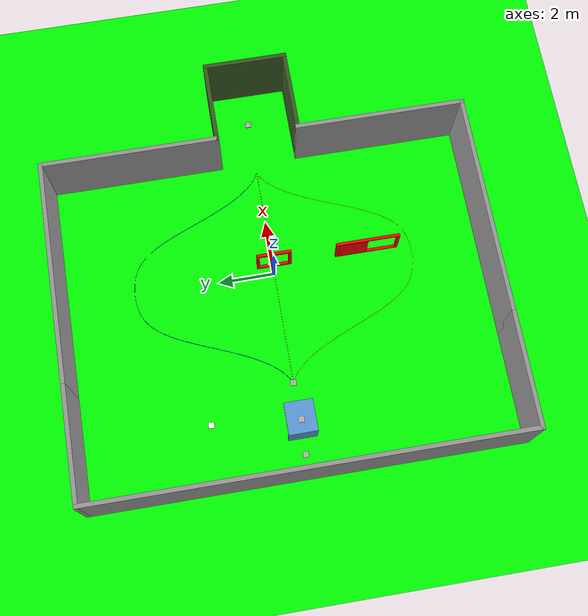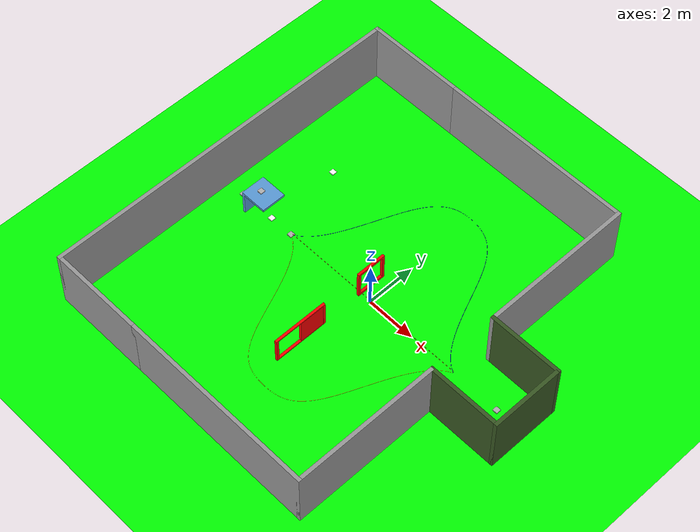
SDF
<sdf version='1.7'>
  <world name='default'>

    <gravity>0 0 -9.8</gravity>
    <magnetic_field>6e-06 2.3e-05 -4.2e-05</magnetic_field>
    <atmosphere type='adiabatic'/>

    <physics type='ode'>
      <max_step_size>0.001</max_step_size>
      <real_time_factor>1</real_time_factor>
      <real_time_update_rate>1000</real_time_update_rate>
    </physics>

    <scene>
      <ambient>0.4 0.4 0.4 1</ambient>
      <background>0.7 0.7 0.7 1</background>
      <shadows>0</shadows>
    </scene>

    <spherical_coordinates>
      <surface_model>EARTH_WGS84</surface_model>
      <latitude_deg>0</latitude_deg>
      <longitude_deg>0</longitude_deg>
      <elevation>0</elevation>
      <heading_deg>0</heading_deg>
    </spherical_coordinates>

    <light name='sun' type='directional'>
      <cast_shadows>1</cast_shadows>
      <pose>0 0 10 0 -0 0</pose>
      <diffuse>0.8 0.8 0.8 1</diffuse>
      <specular>0.2 0.2 0.2 1</specular>
      <attenuation>
        <range>1000</range>
        <constant>0.9</constant>
        <linear>0.01</linear>
        <quadratic>0.001</quadratic>
      </attenuation>
      <direction>-0.5 0.1 -0.9</direction>
      <spot>
        <inner_angle>0</inner_angle>
        <outer_angle>0</outer_angle>
        <falloff>0</falloff>
      </spot>
    </light>

    <plugin name="ros_interface_plugin" filename="librotors_gazebo_ros_interface_plugin.so"/>

    <model name='ground_plane'>
      <static>1</static>
      <link name='link'>
        <collision name='collision'>
          <geometry>
            <plane>
              <normal>0 0 1</normal>
              <size>100 100</size>
            </plane>
          </geometry>
          <surface>
            <contact>
              <collide_bitmask>65535</collide_bitmask>
              <ode/>
            </contact>
            <friction>
              <ode>
                <mu>100</mu>
                <mu2>50</mu2>
              </ode>
              <torsional>
                <ode/>
              </torsional>
            </friction>
            <bounce/>
          </surface>
          <max_contacts>10</max_contacts>
        </collision>
        <visual name='visual'>
          <cast_shadows>0</cast_shadows>
          <geometry>
            <plane>
              <normal>0 0 1</normal>
              <size>100 100</size>
            </plane>
          </geometry>
          <material>
            <ambient>0 1 0 1</ambient>
            <script>
              <uri>file://media/materials/scripts/gazebo.material</uri>
              <name>Gazebo/Grey</name>
            </script>
          </material>
        </visual>
        <self_collide>0</self_collide>
        <enable_wind>0</enable_wind>
        <kinematic>0</kinematic>
      </link>
    </model>

    <include>
      <uri>model://curved_rope_left</uri>
      <pose>0 0 0 0 3.14 0</pose>
    </include>

    <include>
      <uri>model://curved_rope_right</uri>
      <pose>0 0 0 3.14 0 0</pose>
    </include>

    <include>
      <uri>model://straight_rope_middle</uri>
      <pose>0 0 0.1 0 0 0</pose>
    </include>

    <include>
      <uri>model://imav_outer_structure</uri>
      <pose>0 0 0 0 0 0</pose>
    </include>

    <include>
      <uri>model://window</uri>
      <pose>0 0 1 0 0 1.57</pose>
    </include>

    <include>
      <uri>model://obstruction</uri>
      <pose>-5.4 0 -1 0 0 0</pose>
    </include>

    <include>
      <uri>model://qr_plate_unobstructed</uri>
      <pose>-5.0 3 0 0 0 0</pose>
    </include>

    <include>
      <uri>model://qr_plate_obstructed</uri>
      <pose>-5.0 0 0 0 0 0</pose>
    </include>

    <include>
      <uri>model://moving_window</uri>
      <pose>0 -3 1 0 0 -1.57</pose>
    </include>

    <include>
      <uri>model://rotating_plate_with_qr</uri>
      <pose>-5 -3 -0.8 0 0 0</pose>
    </include>

    <include>
      <uri>model://start_zone_aruco</uri>
      <pose>-6.5 0 0 0 0 0</pose>
    </include>

    <include>
      <uri>model://transit_zone_aruco</uri>
      <pose>-4 0 0 0 0 0</pose>
    </include>

    <include>
      <uri>model://drop_zone_aruco</uri>
      <pose>6 0 0 0 0 0</pose>
    </include>

    <include>
      <uri>model://qr_plate_obstructed_top</uri>
      <pose>-5.5 0 1.1 0 0 0</pose>
    </include>
  </world>
</sdf>

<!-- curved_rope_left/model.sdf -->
<sdf version='1.7'>
  <model name='curved_rope_left'>
    <pose>0 0 0 0 -0 -1.57</pose>
    <static>true</static>

    <link name='link_1'>
      <inertial>
        <mass>1</mass>
        <inertia>
          <ixx>0.166667</ixx>
          <ixy>0</ixy>
          <ixz>0</ixz>
          <iyy>0.166667</iyy>
          <iyz>0</iyz>
          <izz>0.166667</izz>
        </inertia>
        <pose>0 0 0 0 -0 0</pose>
      </inertial>
      <pose>0 0 -0 0 -0 0</pose>
      <gravity>1</gravity>
      <self_collide>0</self_collide>
      <kinematic>0</kinematic>
      <enable_wind>0</enable_wind>

      <visual name='visual'>
        <pose>0 0 0 0 -0 0</pose>
        <geometry>
          <mesh>
            <uri>model://curved_rope_left/meshes/rope_curved.stl</uri>
            <scale>1 1 1</scale>
          </mesh>
        </geometry>

        <material>
          <lighting>1</lighting>
          <script>
            <uri>file://media/materials/scripts/gazebo.material</uri>
            <name>Gazebo/Grey</name>
          </script>
          <shader type='pixel'>
            <normal_map>__default__</normal_map>
          </shader>
          <ambient>1 1 0 0</ambient>
          <diffuse>0.7 0.7 0.7 1</diffuse>
          <specular>0.01 0.01 0.01 1</specular>
          <emissive>0 0 0 1</emissive>
        </material>
        <transparency>0</transparency>
        <cast_shadows>1</cast_shadows>
      </visual>

      <collision name='collision'>
        <laser_retro>0</laser_retro>
        <max_contacts>10</max_contacts>
        <pose>0 0 0 0 -0 0</pose>
        <geometry>
          <mesh>
            <uri>model://curved_rope_left/meshes/rope_curved.stl</uri>
            <scale>1 1 1</scale>
          </mesh>
        </geometry>
      </collision>
    </link>

    <allow_auto_disable>1</allow_auto_disable>
  </model>
</sdf>

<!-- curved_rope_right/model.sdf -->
<sdf version='1.7'>
  <model name='curved_rope_right'>
    <static>true</static>
    <pose>0 0 1 0 -0 1.57</pose>
    <link name='link_1'>
      <inertial>
        <mass>1</mass>
        <inertia>
          <ixx>0.166667</ixx>
          <ixy>0</ixy>
          <ixz>0</ixz>
          <iyy>0.166667</iyy>
          <iyz>0</iyz>
          <izz>0.166667</izz>
        </inertia>
        <pose>0 0 0 0 -0 0</pose>
      </inertial>
      <pose>0 0 -0 0 -0 0</pose>
      <gravity>1</gravity>
      <self_collide>0</self_collide>
      <kinematic>0</kinematic>
      <enable_wind>0</enable_wind>
      <visual name='visual'>
        <pose>0 0 0 0 -0 0</pose>
        <geometry>
          <mesh>
            <uri>model://curved_rope_right/meshes/rope_curved.stl</uri>
            <scale>1 1 1</scale>
          </mesh>
        </geometry>
        <material>
          <lighting>1</lighting>
          <script>
            <uri>file://media/materials/scripts/gazebo.material</uri>
            <name>Gazebo/Grey</name>
          </script>
          <shader type='pixel'>
            <normal_map>__default__</normal_map>
          </shader>
          <ambient>0 0 1 0</ambient>
          <diffuse>0.7 0.7 0.7 1</diffuse>
          <specular>0.01 0.01 0.01 1</specular>
          <emissive>0 0 0 1</emissive>
        </material>
        <transparency>0</transparency>
        <cast_shadows>1</cast_shadows>
      </visual>
      <collision name='collision'>
        <laser_retro>0</laser_retro>
        <max_contacts>10</max_contacts>
        <pose>0 0 0 0 -0 0</pose>
        <geometry>
          <mesh>
            <uri>model://curved_rope_right/meshes/rope_curved.stl</uri>
            <scale>1 1 1</scale>
          </mesh>
        </geometry>
      </collision>
    </link>
    <allow_auto_disable>1</allow_auto_disable>
  </model>
</sdf>

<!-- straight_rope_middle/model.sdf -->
<sdf version='1.7'>
  <model name='straight_rope_middle'>
    <pose>0 0 0 0 -0 1.57</pose>
    <link name='link_0'>
      <inertial>
        <mass>1</mass>
        <inertia>
          <ixx>0.166667</ixx>
          <ixy>0</ixy>
          <ixz>0</ixz>
          <iyy>0.166667</iyy>
          <iyz>0</iyz>
          <izz>0.166667</izz>
        </inertia>
        <pose>0 0 0 0 -0 0</pose>
      </inertial>
      <pose>0 -0 0 0 -0 0</pose>
      <gravity>1</gravity>
      <self_collide>0</self_collide>
      <kinematic>0</kinematic>
      <enable_wind>0</enable_wind>
      <visual name='visual'>
        <pose>0 0 0 0 -0 0</pose>
        <geometry>
          <mesh>
            <uri>model://straight_rope_middle/meshes/rope_middle.stl</uri>
            <scale>1 1 1</scale>
          </mesh>
        </geometry>
        <material>
          <lighting>1</lighting>
          <script>
            <uri>file://media/materials/scripts/gazebo.material</uri>
            <name>Gazebo/Grey</name>
          </script>
          <shader type='pixel'>
            <normal_map>__default__</normal_map>
          </shader>
          <diffuse>1 0 0 0</diffuse>
          <ambient>0.3 0.3 0.3 1</ambient>
          <specular>0.01 0.01 0.01 1</specular>
          <emissive>0 0 0 1</emissive>
        </material>
        <transparency>0</transparency>
        <cast_shadows>1</cast_shadows>
      </visual>
      <collision name='collision'>
        <laser_retro>0</laser_retro>
        <max_contacts>10</max_contacts>
        <pose>0 0 0 0 -0 0</pose>
        <geometry>
          <mesh>
            <uri>model://straight_rope_middle/meshes/rope_middle.stl</uri>
            <scale>1 1 1</scale>
          </mesh>
        </geometry>
        <surface>
          <friction>
            <ode>
              <mu>1</mu>
              <mu2>1</mu2>
              <fdir1>0 0 0</fdir1>
              <slip1>0</slip1>
              <slip2>0</slip2>
            </ode>
            <torsional>
              <coefficient>1</coefficient>
              <patch_radius>0</patch_radius>
              <surface_radius>0</surface_radius>
              <use_patch_radius>1</use_patch_radius>
              <ode>
                <slip>0</slip>
              </ode>
            </torsional>
          </friction>
          <bounce>
            <restitution_coefficient>0</restitution_coefficient>
            <threshold>1e+06</threshold>
          </bounce>
          <contact>
            <collide_without_contact>0</collide_without_contact>
            <collide_without_contact_bitmask>1</collide_without_contact_bitmask>
            <collide_bitmask>1</collide_bitmask>
            <ode>
              <soft_cfm>0</soft_cfm>
              <soft_erp>0.2</soft_erp>
              <kp>1e+13</kp>
              <kd>1</kd>
              <max_vel>0.01</max_vel>
              <min_depth>0</min_depth>
            </ode>
            <bullet>
              <split_impulse>1</split_impulse>
              <split_impulse_penetration_threshold>-0.01</split_impulse_penetration_threshold>
              <soft_cfm>0</soft_cfm>
              <soft_erp>0.2</soft_erp>
              <kp>1e+13</kp>
              <kd>1</kd>
            </bullet>
          </contact>
        </surface>
      </collision>
    </link>
    <static>0</static>
    <allow_auto_disable>1</allow_auto_disable>
  </model>
</sdf>

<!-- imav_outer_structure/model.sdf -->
<sdf version='1.7'>
  <model name='imav_outer_structure'>
    <pose>-5.55739 -1.09867 0 0 0 1.57</pose>
    <link name='Wall_1'>
      <collision name='Wall_1_Collision'>
        <geometry>
          <box>
            <size>4 0.15 2.5</size>
          </box>
        </geometry>
        <pose>0 0 1.25 0 -0 0</pose>
      </collision>
      <visual name='Wall_1_Visual'>
        <pose>0 0 1.25 0 -0 0</pose>
        <geometry>
          <box>
            <size>4 0.15 2.5</size>
          </box>
        </geometry>
        <material>
          <script>
            <uri>file://media/materials/scripts/gazebo.material</uri>
            <name>Gazebo/Grey</name>
          </script>
          <ambient>0.74902 0.74902 0.74902 1</ambient>
        </material>
        <meta>
          <layer>0</layer>
        </meta>
      </visual>
      <pose>-5.35 7.425 0 0 -0 3.14159</pose>
    </link>
    <link name='Wall_2'>
      <collision name='Wall_2_Collision'>
        <geometry>
          <box>
            <size>15 0.15 2.5</size>
          </box>
        </geometry>
        <pose>0 0 1.25 0 -0 0</pose>
      </collision>
      <visual name='Wall_2_Visual'>
        <pose>0 0 1.25 0 -0 0</pose>
        <geometry>
          <box>
            <size>15 0.15 2.5</size>
          </box>
        </geometry>
        <material>
          <script>
            <uri>file://media/materials/scripts/gazebo.material</uri>
            <name>Gazebo/Grey</name>
          </script>
          <ambient>0.74902 0.74902 0.74902 1</ambient>
        </material>
        <meta>
          <layer>0</layer>
        </meta>
      </visual>
      <pose>-7.275 0 0 0 -0 -1.5708</pose>
    </link>
    <link name='Wall_3'>
      <collision name='Wall_3_Collision'>
        <geometry>
          <box>
            <size>4 0.15 2.5</size>
          </box>
        </geometry>
        <pose>0 0 1.25 0 -0 0</pose>
      </collision>
      <visual name='Wall_3_Visual'>
        <pose>0 0 1.25 0 -0 0</pose>
        <geometry>
          <box>
            <size>4 0.15 2.5</size>
          </box>
        </geometry>
        <material>
          <script>
            <uri>file://media/materials/scripts/gazebo.material</uri>
            <name>Gazebo/Grey</name>
          </script>
          <ambient>0.74902 0.74902 0.74902 1</ambient>
        </material>
        <meta>
          <layer>0</layer>
        </meta>
      </visual>
      <pose>-5.35 -7.425 0 0 -0 0</pose>
    </link>
    <link name='Wall_4'>
      <collision name='Wall_4_Collision'>
        <geometry>
          <box>
            <size>8 0.15 2.5</size>
          </box>
        </geometry>
        <pose>0 0 1.25 0 -0 0</pose>
      </collision>
      <visual name='Wall_4_Visual'>
        <pose>0 0 1.25 0 -0 0</pose>
        <geometry>
          <box>
            <size>8 0.15 2.5</size>
          </box>
        </geometry>
        <material>
          <script>
            <uri>file://media/materials/scripts/gazebo.material</uri>
            <name>Gazebo/Grey</name>
          </script>
          <ambient>0.74902 0.74902 0.74902 1</ambient>
        </material>
        <meta>
          <layer>0</layer>
        </meta>
      </visual>
      <pose>0.5 -7.425 0 0 -0 0</pose>
    </link>
    <link name='Wall_5'>
      <collision name='Wall_5_Collision'>
        <geometry>
          <box>
            <size>6 0.15 2.5</size>
          </box>
        </geometry>
        <pose>0 0 1.25 0 -0 0</pose>
      </collision>
      <visual name='Wall_5_Visual'>
        <pose>0 0 1.25 0 -0 0</pose>
        <geometry>
          <box>
            <size>6 0.15 2.5</size>
          </box>
        </geometry>
        <material>
          <script>
            <uri>file://media/materials/scripts/gazebo.material</uri>
            <name>Gazebo/Grey</name>
          </script>
          <ambient>0.74902 0.74902 0.74902 1</ambient>
        </material>
        <meta>
          <layer>0</layer>
        </meta>
      </visual>
      <pose>4.425 -4.5 0 0 -0 1.5708</pose>
    </link>
    <link name='Wall_6'>
      <collision name='Wall_6_Collision'>
        <geometry>
          <box>
            <size>3 0.15 2.5</size>
          </box>
        </geometry>
        <pose>0 0 1.25 0 -0 0</pose>
      </collision>
      <visual name='Wall_6_Visual'>
        <pose>0 0 1.25 0 -0 0</pose>
        <geometry>
          <box>
            <size>3 0.15 2.5</size>
          </box>
        </geometry>
        <material>
          <script>
            <uri>file://media/materials/scripts/gazebo.material</uri>
            <name>Gazebo/Grey</name>
          </script>
          <ambient>0.219608 0.341176 0.137255 1</ambient>
        </material>
        <meta>
          <layer>0</layer>
        </meta>
      </visual>
      <pose>5.85 -1.575 0 0 -0 0</pose>
    </link>
    <link name='Wall_7'>
      <collision name='Wall_7_Collision'>
        <geometry>
          <box>
            <size>3 0.15 2.5</size>
          </box>
        </geometry>
        <pose>0 0 1.25 0 -0 0</pose>
      </collision>
      <visual name='Wall_7_Visual'>
        <pose>0 0 1.25 0 -0 0</pose>
        <geometry>
          <box>
            <size>3 0.15 2.5</size>
          </box>
        </geometry>
        <material>
          <script>
            <uri>file://media/materials/scripts/gazebo.material</uri>
            <name>Gazebo/Grey</name>
          </script>
          <ambient>0.219608 0.341176 0.137255 1</ambient>
        </material>
        <meta>
          <layer>0</layer>
        </meta>
      </visual>
      <pose>7.275 -0.15 0 0 -0 1.5708</pose>
    </link>
    <link name='Wall_8'>
      <collision name='Wall_8_Collision'>
        <geometry>
          <box>
            <size>3 0.15 2.5</size>
          </box>
        </geometry>
        <pose>0 0 1.25 0 -0 0</pose>
      </collision>
      <visual name='Wall_8_Visual'>
        <pose>0 0 1.25 0 -0 0</pose>
        <geometry>
          <box>
            <size>3 0.15 2.5</size>
          </box>
        </geometry>
        <material>
          <script>
            <uri>file://media/materials/scripts/gazebo.material</uri>
            <name>Gazebo/Grey</name>
          </script>
          <ambient>0.219608 0.341176 0.137255 1</ambient>
        </material>
        <meta>
          <layer>0</layer>
        </meta>
      </visual>
      <pose>5.85 1.275 0 0 -0 3.14159</pose>
    </link>
    <link name='Wall_9'>
      <collision name='Wall_9_Collision'>
        <geometry>
          <box>
            <size>6.3 0.15 2.5</size>
          </box>
        </geometry>
        <pose>0 0 1.25 0 -0 0</pose>
      </collision>
      <visual name='Wall_9_Visual'>
        <pose>0 0 1.25 0 -0 0</pose>
        <geometry>
          <box>
            <size>6.3 0.15 2.5</size>
          </box>
        </geometry>
        <material>
          <script>
            <uri>file://media/materials/scripts/gazebo.material</uri>
            <name>Gazebo/Grey</name>
          </script>
          <ambient>0.74902 0.74902 0.74902 1</ambient>
        </material>
        <meta>
          <layer>0</layer>
        </meta>
      </visual>
      <pose>4.425 4.35 0 0 -0 -1.5708</pose>
    </link>
    <link name='Wall_10'>
      <collision name='Wall_10_Collision'>
        <geometry>
          <box>
            <size>8 0.15 2.5</size>
          </box>
        </geometry>
        <pose>0 0 1.25 0 -0 0</pose>
      </collision>
      <visual name='Wall_10_Visual'>
        <pose>0 0 1.25 0 -0 0</pose>
        <geometry>
          <box>
            <size>8 0.15 2.5</size>
          </box>
        </geometry>
        <material>
          <script>
            <uri>file://media/materials/scripts/gazebo.material</uri>
            <name>Gazebo/Grey</name>
          </script>
          <ambient>0.74902 0.74902 0.74902 1</ambient>
        </material>
        <meta>
          <layer>0</layer>
        </meta>
      </visual>
      <pose>0.5 7.425 0 0 -0 0</pose>
    </link>
    <static>1</static>
  </model>
</sdf>

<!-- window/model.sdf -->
<sdf version='1.7'>
  <model name='window'>
    <static>true</static>

    <link name='link_1'>
      <inertial>
        <mass>1</mass>
        <inertia>
          <ixx>0.166667</ixx>
          <ixy>0</ixy>
          <ixz>0</ixz>
          <iyy>0.166667</iyy>
          <iyz>0</iyz>
          <izz>0.166667</izz>
        </inertia>
        <pose>0 0 0 0 -0 0</pose>
      </inertial>

      <gravity>1</gravity>
      <self_collide>0</self_collide>
      <kinematic>0</kinematic>
      <enable_wind>0</enable_wind>
      <visual name='visual'>
        <pose>0 0 0 0 -0 0</pose>
        <geometry>
          <mesh>
            <uri>model://window/meshes/window.stl</uri>
            <scale>1 1 1</scale>
          </mesh>
        </geometry>
        <material>
          <lighting>1</lighting>
          <script>
            <uri>file://media/materials/scripts/gazebo.material</uri>
            <name>Gazebo/Grey</name>
          </script>
          <shader type='pixel'>
            <normal_map>__default__</normal_map>
          </shader>
          <ambient>1 0 0 1</ambient>
          <diffuse>0.7 0.7 0.7 1</diffuse>
          <specular>0.01 0.01 0.01 1</specular>
          <emissive>0 0 0 1</emissive>
        </material>
        <transparency>0</transparency>
        <cast_shadows>1</cast_shadows>
      </visual>
      <collision name='collision'>
        <laser_retro>0</laser_retro>
        <max_contacts>10</max_contacts>
        <pose>0 0 0 0 -0 0</pose>
        <geometry>
          <mesh>
            <uri>model://window/meshes/window.stl</uri>
            <scale>1 1 1</scale>
          </mesh>
        </geometry>
        <surface>
          <friction>
            <ode>
              <mu>1</mu>
              <mu2>1</mu2>
              <fdir1>0 0 0</fdir1>
              <slip1>0</slip1>
              <slip2>0</slip2>
            </ode>
            <torsional>
              <coefficient>1</coefficient>
              <patch_radius>0</patch_radius>
              <surface_radius>0</surface_radius>
              <use_patch_radius>1</use_patch_radius>
              <ode>
                <slip>0</slip>
              </ode>
            </torsional>
          </friction>
          <bounce>
            <restitution_coefficient>0</restitution_coefficient>
            <threshold>1e+06</threshold>
          </bounce>
          <contact>
            <collide_without_contact>0</collide_without_contact>
            <collide_without_contact_bitmask>1</collide_without_contact_bitmask>
            <collide_bitmask>1</collide_bitmask>
            <ode>
              <soft_cfm>0</soft_cfm>
              <soft_erp>0.2</soft_erp>
              <kp>1e+13</kp>
              <kd>1</kd>
              <max_vel>0.01</max_vel>
              <min_depth>0</min_depth>
            </ode>
            <bullet>
              <split_impulse>1</split_impulse>
              <split_impulse_penetration_threshold>-0.01</split_impulse_penetration_threshold>
              <soft_cfm>0</soft_cfm>
              <soft_erp>0.2</soft_erp>
              <kp>1e+13</kp>
              <kd>1</kd>
            </bullet>
          </contact>
        </surface>
      </collision>
    </link>
    <allow_auto_disable>1</allow_auto_disable>
  </model>
</sdf>

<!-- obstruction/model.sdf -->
<sdf version='1.7'>
  <model name='obstruction'>
    <static>true</static>
    <link name='link_0'>
      <inertial>
        <mass>1</mass>
        <inertia>
          <ixx>0.166667</ixx>
          <ixy>0</ixy>
          <ixz>0</ixz>
          <iyy>0.166667</iyy>
          <iyz>0</iyz>
          <izz>0.166667</izz>
        </inertia>
        <pose>0 0 0 0 -0 0</pose>
      </inertial>
      <pose>0 0 0 0 -0 0</pose>
      <gravity>1</gravity>
      <self_collide>0</self_collide>
      <kinematic>0</kinematic>
      <enable_wind>0</enable_wind>
      <visual name='visual'>
        <pose>0 0 0 0 0 0</pose>
        <geometry>
          <mesh>
            <uri>model://obstruction/meshes/obstruction.stl</uri>
            <scale>1 1 1</scale>
          </mesh>
        </geometry>
        <material>
          <lighting>1</lighting>
          <script>
            <uri>file://media/materials/scripts/gazebo.material</uri>
            <name>Gazebo/Grey</name>
          </script>
          <shader type='pixel'>
            <normal_map>__default__</normal_map>
          </shader>
          <ambient>0.353 0.604 0.843 1</ambient>
          <diffuse>0.7 0.7 0.7 1</diffuse>
          <specular>0.01 0.01 0.01 1</specular>
          <emissive>0 0 0 1</emissive>
        </material>
        <transparency>0</transparency>
        <cast_shadows>1</cast_shadows>
      </visual>
      <collision name='collision'>
        <laser_retro>0</laser_retro>
        <max_contacts>10</max_contacts>
        <pose>0 0 0 0 -0 0</pose>
        <geometry>
          <mesh>
            <uri>model://obstruction/meshes/obstruction.stl</uri>
            <scale>1 1 1</scale>
          </mesh>
        </geometry>
        <surface>
          <friction>
            <ode>
              <mu>1</mu>
              <mu2>1</mu2>
              <fdir1>0 0 0</fdir1>
              <slip1>0</slip1>
              <slip2>0</slip2>
            </ode>
            <torsional>
              <coefficient>1</coefficient>
              <patch_radius>0</patch_radius>
              <surface_radius>0</surface_radius>
              <use_patch_radius>1</use_patch_radius>
              <ode>
                <slip>0</slip>
              </ode>
            </torsional>
          </friction>
          <bounce>
            <restitution_coefficient>0</restitution_coefficient>
            <threshold>1e+06</threshold>
          </bounce>
          <contact>
            <collide_without_contact>0</collide_without_contact>
            <collide_without_contact_bitmask>1</collide_without_contact_bitmask>
            <collide_bitmask>1</collide_bitmask>
            <ode>
              <soft_cfm>0</soft_cfm>
              <soft_erp>0.2</soft_erp>
              <kp>1e+13</kp>
              <kd>1</kd>
              <max_vel>0.01</max_vel>
              <min_depth>0</min_depth>
            </ode>
            <bullet>
              <split_impulse>1</split_impulse>
              <split_impulse_penetration_threshold>-0.01</split_impulse_penetration_threshold>
              <soft_cfm>0</soft_cfm>
              <soft_erp>0.2</soft_erp>
              <kp>1e+13</kp>
              <kd>1</kd>
            </bullet>
          </contact>
        </surface>
      </collision>
    </link>
    <allow_auto_disable>1</allow_auto_disable>
  </model>
</sdf>

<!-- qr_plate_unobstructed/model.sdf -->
<sdf version='1.7'>
  <model name='qr_plate_unobstructed'>
    <static>true</static>
    <link name='link_0'>
      <inertial>
        <mass>0.0475767</mass>
        <inertia>
          <ixx>0.0039737</ixx>
          <ixy>0</ixy>
          <ixz>0</ixz>
          <iyy>0.0039737</iyy>
          <iyz>0</iyz>
          <izz>0.00792945</izz>
        </inertia>
        <pose>0 0 0 0 -0 0</pose>
      </inertial>
      <pose>-0 -0 0 0 -0 0</pose>
      <gravity>1</gravity>
      <self_collide>0</self_collide>
      <kinematic>0</kinematic>
      <enable_wind>0</enable_wind>
      <visual name='visual'>
        <pose>0 0 0 0 -0 0</pose>
        <geometry>
          <box>
            <size>0.2 0.2 0.04</size>
          </box>
        </geometry>
        <material>
          <lighting>1</lighting>
          <script>
            <uri>model://qr_plate_unobstructed/materials/scripts</uri>
            <uri>model://qr_plate_unobstructed/materials/textures</uri>
            <name>Marker</name>
          </script>
          <shader type='pixel'>
            <normal_map>__default__</normal_map>
          </shader>
          <ambient>1 1 1 1</ambient>
          <diffuse>1 1 1 1</diffuse>
          <specular>1 1 1 1</specular>
          <emissive>0 0 0 1</emissive>
        </material>
        <transparency>0</transparency>
        <cast_shadows>1</cast_shadows>
      </visual>
      <collision name='collision'>
        <laser_retro>0</laser_retro>
        <max_contacts>10</max_contacts>
        <pose>0 0 0 0 -0 0</pose>
        <geometry>
          <box>
            <size>0.2 0.2 0.04</size>
          </box>
        </geometry>
        <surface>
          <friction>
            <ode>
              <mu>1</mu>
              <mu2>1</mu2>
              <fdir1>0 0 0</fdir1>
              <slip1>0</slip1>
              <slip2>0</slip2>
            </ode>
            <torsional>
              <coefficient>1</coefficient>
              <patch_radius>0</patch_radius>
              <surface_radius>0</surface_radius>
              <use_patch_radius>1</use_patch_radius>
              <ode>
                <slip>0</slip>
              </ode>
            </torsional>
          </friction>
          <bounce>
            <restitution_coefficient>0</restitution_coefficient>
            <threshold>1e+06</threshold>
          </bounce>
          <contact>
            <collide_without_contact>0</collide_without_contact>
            <collide_without_contact_bitmask>1</collide_without_contact_bitmask>
            <collide_bitmask>1</collide_bitmask>
            <ode>
              <soft_cfm>0</soft_cfm>
              <soft_erp>0.2</soft_erp>
              <kp>1e+13</kp>
              <kd>1</kd>
              <max_vel>0.01</max_vel>
              <min_depth>0</min_depth>
            </ode>
            <bullet>
              <split_impulse>1</split_impulse>
              <split_impulse_penetration_threshold>-0.01</split_impulse_penetration_threshold>
              <soft_cfm>0</soft_cfm>
              <soft_erp>0.2</soft_erp>
              <kp>1e+13</kp>
              <kd>1</kd>
            </bullet>
          </contact>
        </surface>
      </collision>
    </link>
    <allow_auto_disable>1</allow_auto_disable>
  </model>
</sdf>

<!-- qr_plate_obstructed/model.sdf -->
<sdf version='1.7'>
  <model name='qr_plate_obstructed'>
    <static>true</static>
    <link name='link_0'>
      <inertial>
        <mass>0.0475767</mass>
        <inertia>
          <ixx>0.0039737</ixx>
          <ixy>0</ixy>
          <ixz>0</ixz>
          <iyy>0.0039737</iyy>
          <iyz>0</iyz>
          <izz>0.00792945</izz>
        </inertia>
        <pose>0 0 0 0 -0 0</pose>
      </inertial>
      <pose>-0 -0 0 0 -0 0</pose>
      <gravity>1</gravity>
      <self_collide>0</self_collide>
      <kinematic>0</kinematic>
      <enable_wind>0</enable_wind>
      <visual name='visual'>
        <pose>0 0 0 0 -0 0</pose>
        <geometry>
          <box>
            <size>0.2 0.2 0.04</size>
          </box>
        </geometry>
        <material>
          <lighting>1</lighting>
          <script>
            <uri>model://qr_plate_obstructed/materials/scripts</uri>
            <uri>model://qr_plate_obstructed/materials/textures</uri>
            <name>Marker</name>
          </script>
          <shader type='pixel'>
            <normal_map>__default__</normal_map>
          </shader>
          <ambient>1 1 1 1</ambient>
          <diffuse>1 1 1 1</diffuse>
          <specular>1 1 1 1</specular>
          <emissive>0 0 0 1</emissive>
        </material>
        <transparency>0</transparency>
        <cast_shadows>1</cast_shadows>
      </visual>
      <collision name='collision'>
        <laser_retro>0</laser_retro>
        <max_contacts>10</max_contacts>
        <pose>0 0 0 0 -0 0</pose>
        <geometry>
          <box>
            <size>0.2 0.2 0.04</size>
          </box>
        </geometry>
        <surface>
          <friction>
            <ode>
              <mu>1</mu>
              <mu2>1</mu2>
              <fdir1>0 0 0</fdir1>
              <slip1>0</slip1>
              <slip2>0</slip2>
            </ode>
            <torsional>
              <coefficient>1</coefficient>
              <patch_radius>0</patch_radius>
              <surface_radius>0</surface_radius>
              <use_patch_radius>1</use_patch_radius>
              <ode>
                <slip>0</slip>
              </ode>
            </torsional>
          </friction>
          <bounce>
            <restitution_coefficient>0</restitution_coefficient>
            <threshold>1e+06</threshold>
          </bounce>
          <contact>
            <collide_without_contact>0</collide_without_contact>
            <collide_without_contact_bitmask>1</collide_without_contact_bitmask>
            <collide_bitmask>1</collide_bitmask>
            <ode>
              <soft_cfm>0</soft_cfm>
              <soft_erp>0.2</soft_erp>
              <kp>1e+13</kp>
              <kd>1</kd>
              <max_vel>0.01</max_vel>
              <min_depth>0</min_depth>
            </ode>
            <bullet>
              <split_impulse>1</split_impulse>
              <split_impulse_penetration_threshold>-0.01</split_impulse_penetration_threshold>
              <soft_cfm>0</soft_cfm>
              <soft_erp>0.2</soft_erp>
              <kp>1e+13</kp>
              <kd>1</kd>
            </bullet>
          </contact>
        </surface>
      </collision>
    </link>
    <allow_auto_disable>1</allow_auto_disable>
  </model>
</sdf>

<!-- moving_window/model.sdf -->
<sdf version='1.7'>
  <model name='moving_window'>

    <link name='link_0'>
      <kinematic>true</kinematic>
      <gravity>1</gravity>
      <inertial>
        <mass>1</mass>
        <inertia>
          <ixx>0.166667</ixx>
          <ixy>0</ixy>
          <ixz>0</ixz>
          <iyy>0.166667</iyy>
          <iyz>0</iyz>
          <izz>0.166667</izz>
        </inertia>
      </inertial>
      <pose>0.24776 0.00025 -0.049962 0 -0 0</pose>
      <visual name='visual'>
        <pose>0 0 0 0 -0 0</pose>
        <geometry>
          <mesh>
            <uri>model://moving_window/meshes/window_frame.stl</uri>
            <scale>1 1 1</scale>
          </mesh>
        </geometry>
        <material>
          <lighting>1</lighting>
          <script>
            <uri>file://media/materials/scripts/gazebo.material</uri>
            <name>Gazebo/Grey</name>
          </script>
          <shader type='pixel'/>
          <ambient>1 0 0 1</ambient>
          <diffuse>0.7 0.7 0.7 1</diffuse>
          <specular>0.01 0.01 0.01 1</specular>
          <emissive>0 0 0 1</emissive>
        </material>
        <transparency>0</transparency>
        <cast_shadows>1</cast_shadows>
      </visual>

      <collision name='collision'>
        <laser_retro>0</laser_retro>
        <max_contacts>10</max_contacts>
        <pose>0 0 0 0 -0 0</pose>
        <geometry>
          <mesh>
            <uri>model://moving_window/meshes/window_frame.stl</uri>
            <scale>1 1 1</scale>
          </mesh>
        </geometry>
        <surface>
          <friction>
            <ode>
              <mu>1</mu>
              <mu2>1</mu2>
              <fdir1>0 0 0</fdir1>
              <slip1>0</slip1>
              <slip2>0</slip2>
            </ode>
            <torsional>
              <coefficient>1</coefficient>
              <patch_radius>0</patch_radius>
              <surface_radius>0</surface_radius>
              <use_patch_radius>1</use_patch_radius>
              <ode>
                <slip>0</slip>
              </ode>
            </torsional>
          </friction>
          <bounce>
            <restitution_coefficient>0</restitution_coefficient>
            <threshold>1e+06</threshold>
          </bounce>
          <contact>
            <collide_without_contact>0</collide_without_contact>
            <collide_without_contact_bitmask>1</collide_without_contact_bitmask>
            <collide_bitmask>1</collide_bitmask>
            <ode>
              <soft_cfm>0</soft_cfm>
              <soft_erp>0.2</soft_erp>
              <kp>1e+13</kp>
              <kd>1</kd>
              <max_vel>1</max_vel>
              <min_depth>0</min_depth>
            </ode>
            <bullet>
              <split_impulse>1</split_impulse>
              <split_impulse_penetration_threshold>-0.01</split_impulse_penetration_threshold>
              <soft_cfm>0</soft_cfm>
              <soft_erp>0.2</soft_erp>
              <kp>1e+13</kp>
              <kd>1</kd>
            </bullet>
          </contact>
        </surface>
      </collision>
    </link>

    <link name='link_1'>
    <static>true</static>
      <pose>-0.24776 -0.00025 0.049962 0 -0 0</pose>
      <visual name='visual'>
        <pose>0 0 0 0 -0 0</pose>
        <geometry>
          <mesh>
            <uri>model://moving_window/meshes/window_obstruction.stl</uri>
            <scale>1 1 1</scale>
          </mesh>
        </geometry>
        <material>
          <lighting>1</lighting>
          <script>
            <uri>file://media/materials/scripts/gazebo.material</uri>
            <name>Gazebo/Grey</name>
          </script>
          <shader type='pixel'/>
          <ambient>1 0 0 1</ambient>
          <diffuse>0.7 0.7 0.7 1</diffuse>
          <specular>0.01 0.01 0.01 1</specular>
          <emissive>0 0 0 1</emissive>
        </material>
        <transparency>0</transparency>
        <cast_shadows>1</cast_shadows>
      </visual>
      <collision name='collision'>
        <laser_retro>0</laser_retro>
        <max_contacts>10</max_contacts>
        <pose>0 0 0 0 -0 0</pose>
        <geometry>
          <mesh>
            <uri>model://moving_window/meshes/window_obstruction.stl</uri>
            <scale>1 1 1</scale>
          </mesh>
        </geometry>
        <surface>
          <friction>
            <ode>
              <mu>1</mu>
              <mu2>1</mu2>
              <fdir1>0 0 0</fdir1>
              <slip1>0</slip1>
              <slip2>0</slip2>
            </ode>
            <torsional>
              <coefficient>1</coefficient>
              <patch_radius>0</patch_radius>
              <surface_radius>0</surface_radius>
              <use_patch_radius>1</use_patch_radius>
              <ode>
                <slip>0</slip>
              </ode>
            </torsional>
          </friction>
          <bounce>
            <restitution_coefficient>0</restitution_coefficient>
            <threshold>1e+06</threshold>
          </bounce>
          <contact>
            <collide_without_contact>0</collide_without_contact>
            <collide_without_contact_bitmask>1</collide_without_contact_bitmask>
            <collide_bitmask>1</collide_bitmask>
            <ode>
              <soft_cfm>0</soft_cfm>
              <soft_erp>0.2</soft_erp>
              <kp>1e+13</kp>
              <kd>1</kd>
              <max_vel>0.01</max_vel>
              <min_depth>0</min_depth>
            </ode>
            <bullet>
              <split_impulse>1</split_impulse>
              <split_impulse_penetration_threshold>-0.01</split_impulse_penetration_threshold>
              <soft_cfm>0</soft_cfm>
              <soft_erp>0.2</soft_erp>
              <kp>1e+13</kp>
              <kd>1</kd>
            </bullet>
          </contact>
        </surface>
      </collision>
    </link>

    <joint name='link_1_JOINT_0' type='prismatic'>
      <parent>link_0</parent>
      <child>link_1</child>
      <pose>0 0 0 0 0 0</pose>
      <axis>
        <xyz>1 0 0</xyz>
      </axis>
    </joint>

    <plugin name="SHM_plugin" filename="libSHMplugin.so">
        <joint_name>link_1_JOINT_0</joint_name>
        <amplitude>0.5</amplitude>
        <frequency>0.25</frequency>
        <phase>1.57</phase>
        <offset>-1.075</offset>
    </plugin>
  </model>
</sdf>

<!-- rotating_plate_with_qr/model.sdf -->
<sdf version='1.7'>
  <model name='rotating_plate_with_qr'>
      <link name='link_0'>
        <gravity>1</gravity>
        <inertial>
          <mass>1</mass>
          <inertia>
            <ixx>0.166667</ixx>
            <ixy>0</ixy>
            <ixz>0</ixz>
            <iyy>0.166667</iyy>
            <iyz>0</iyz>
            <izz>0.166667</izz>
          </inertia>
        </inertial>

        <visual name='visual'>

          <pose>0 0 -1.65 0 -0 0</pose>
          <geometry>
            <mesh>
              <uri>model://rotating_plate_with_qr/meshes/rotating_top.stl</uri>
              <scale>1 1 1</scale>
            </mesh>
          </geometry>
          <material>
            <lighting>1</lighting>
            <script>
              <uri>file://media/materials/scripts/gazebo.material</uri>
              <name>Gazebo/Grey</name>
            </script>
            <shader type='pixel'/>
            <emissive>0 0 0 1</emissive>
          </material>
          <transparency>0</transparency>
          <cast_shadows>1</cast_shadows>
        </visual>

        <visual name='visual2'>
          <pose>-0.5 0 0.4 0 -0 0</pose>
          <geometry>
            <box>
              <size>0.2 0.2 0.04</size>
            </box>
          </geometry>
          <material>
            <lighting>1</lighting>
            <script>
              <uri>model://rotating_plate_with_qr/materials/scripts</uri>
              <uri>model://rotating_plate_with_qr/materials/textures</uri>
              <name>Marker</name>
            </script>
            <shader type='pixel'>
              <normal_map>__default__</normal_map>
            </shader>
            <ambient>0.3 0.3 0.3 1</ambient>
            <diffuse>0.7 0.7 0.7 1</diffuse>
            <specular>0.01 0.01 0.01 1</specular>
            <emissive>0 0 0 1</emissive>
          </material>
          <transparency>0</transparency>
          <cast_shadows>1</cast_shadows>
        </visual>

        <collision name='collision'>
          <laser_retro>0</laser_retro>
          <max_contacts>10</max_contacts>
          <pose>0 0 -1.65 0 -0 0</pose>
          <geometry>
            <mesh>
              <uri>model://rotating_plate_with_qr/meshes/rotating_top.stl</uri>
              <scale>1 1 1</scale>
            </mesh>
          </geometry>
          <surface>
            <friction>
              <ode>
                <mu>1</mu>
                <mu2>1</mu2>
                <fdir1>0 0 0</fdir1>
                <slip1>0</slip1>
                <slip2>0</slip2>
              </ode>
              <torsional>
                <coefficient>1</coefficient>
                <patch_radius>0</patch_radius>
                <surface_radius>0</surface_radius>
                <use_patch_radius>1</use_patch_radius>
                <ode>
                  <slip>0</slip>
                </ode>
              </torsional>
            </friction>
          </surface>
        </collision>
      </link>

     <link name='base'>
        <kinematic>0</kinematic>
        <visual name='visual'>
          <pose>0 0 0 0 -0 0</pose>
          <geometry>
            <cylinder>
              <radius>0.1</radius>
              <length>0.06</length>
            </cylinder>
          </geometry>
          <material>
            <lighting>1</lighting>
            <script>
              <uri>file://media/materials/scripts/gazebo.material</uri>
              <name>Gazebo/Grey</name>
            </script>
            <shader type='pixel'>
              <normal_map>__default__</normal_map>
            </shader>
            <ambient>0.3 0.3 0.3 1</ambient>
            <diffuse>0.7 0.7 0.7 1</diffuse>
            <specular>0.01 0.01 0.01 1</specular>
            <emissive>0 0 0 1</emissive>
          </material>
          <transparency>0</transparency>
          <cast_shadows>1</cast_shadows>
        </visual>
        <collision name='collision'>
          <laser_retro>0</laser_retro>
          <max_contacts>10</max_contacts>
          <pose>0 0 0 0 -0 0</pose>
          <geometry>
            <cylinder>
              <radius>0.1</radius>
              <length>0.06</length>
            </cylinder>
          </geometry>
        </collision>
      </link>

      <joint name='link_1_JOINT_0' type='revolute'>
        <parent>base</parent>
        <child>link_0</child>
        <pose>0 0 0 0 -0 0</pose>
        <axis>
          <xyz>0 0 1</xyz>
        </axis>
      </joint>

      <plugin name="rotating_plugin" filename="libRotation_controller.so">
      <maxForce>1000</maxForce>
      <vel>0.2</vel>
      </plugin>
    </model>
</sdf>

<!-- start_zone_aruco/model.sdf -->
<sdf version='1.7'>
  <model name='start_zone_aruco'>
    <static>true</static>
    <link name='link_0'>
      <inertial>
        <mass>0.0475767</mass>
        <inertia>
          <ixx>0.0039737</ixx>
          <ixy>0</ixy>
          <ixz>0</ixz>
          <iyy>0.0039737</iyy>
          <iyz>0</iyz>
          <izz>0.00792945</izz>
        </inertia>
        <pose>0 0 0 0 -0 0</pose>
      </inertial>
      <pose>-0 -0 0 0 -0 0</pose>
      <gravity>1</gravity>
      <self_collide>0</self_collide>
      <kinematic>0</kinematic>
      <enable_wind>0</enable_wind>
      <visual name='visual'>
        <pose>0 0 0 0 -0 0</pose>
        <geometry>
          <box>
            <size>0.2 0.2 0.04</size>
          </box>
        </geometry>
        <material>
          <lighting>1</lighting>
          <script>
            <uri>model://qr_plate_obstructed/materials/scripts</uri>
            <uri>model://qr_plate_obstructed/materials/textures</uri>
            <name>Marker</name>
          </script>
          <shader type='pixel'>
            <normal_map>__default__</normal_map>
          </shader>
          <ambient>0.3 0.3 0.3 1</ambient>
          <diffuse>0.7 0.7 0.7 1</diffuse>
          <specular>0.01 0.01 0.01 1</specular>
          <emissive>0 0 0 1</emissive>
        </material>
        <transparency>0</transparency>
        <cast_shadows>1</cast_shadows>
      </visual>
      <collision name='collision'>
        <laser_retro>0</laser_retro>
        <max_contacts>10</max_contacts>
        <pose>0 0 0 0 -0 0</pose>
        <geometry>
          <box>
            <size>0.2 0.2 0.04</size>
          </box>
        </geometry>
        <surface>
          <friction>
            <ode>
              <mu>1</mu>
              <mu2>1</mu2>
              <fdir1>0 0 0</fdir1>
              <slip1>0</slip1>
              <slip2>0</slip2>
            </ode>
            <torsional>
              <coefficient>1</coefficient>
              <patch_radius>0</patch_radius>
              <surface_radius>0</surface_radius>
              <use_patch_radius>1</use_patch_radius>
              <ode>
                <slip>0</slip>
              </ode>
            </torsional>
          </friction>
          <bounce>
            <restitution_coefficient>0</restitution_coefficient>
            <threshold>1e+06</threshold>
          </bounce>
          <contact>
            <collide_without_contact>0</collide_without_contact>
            <collide_without_contact_bitmask>1</collide_without_contact_bitmask>
            <collide_bitmask>1</collide_bitmask>
            <ode>
              <soft_cfm>0</soft_cfm>
              <soft_erp>0.2</soft_erp>
              <kp>1e+13</kp>
              <kd>1</kd>
              <max_vel>0.01</max_vel>
              <min_depth>0</min_depth>
            </ode>
            <bullet>
              <split_impulse>1</split_impulse>
              <split_impulse_penetration_threshold>-0.01</split_impulse_penetration_threshold>
              <soft_cfm>0</soft_cfm>
              <soft_erp>0.2</soft_erp>
              <kp>1e+13</kp>
              <kd>1</kd>
            </bullet>
          </contact>
        </surface>
      </collision>
    </link>
    <allow_auto_disable>1</allow_auto_disable>
  </model>
</sdf>

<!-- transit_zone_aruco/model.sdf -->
<sdf version='1.7'>
  <model name='transit_zone_aruco'>
    <static>true</static>
    <link name='link_0'>
      <inertial>
        <mass>0.0475767</mass>
        <inertia>
          <ixx>0.0039737</ixx>
          <ixy>0</ixy>
          <ixz>0</ixz>
          <iyy>0.0039737</iyy>
          <iyz>0</iyz>
          <izz>0.00792945</izz>
        </inertia>
        <pose>0 0 0 0 -0 0</pose>
      </inertial>
      <pose>-0 -0 0 0 -0 0</pose>
      <gravity>1</gravity>
      <self_collide>0</self_collide>
      <kinematic>0</kinematic>
      <enable_wind>0</enable_wind>
      <visual name='visual'>
        <pose>0 0 0 0 -0 0</pose>
        <geometry>
          <box>
            <size>0.2 0.2 0.04</size>
          </box>
        </geometry>
        <material>
          <lighting>1</lighting>
          <script>
            <uri>model://qr_plate_obstructed/materials/scripts</uri>
            <uri>model://qr_plate_obstructed/materials/textures</uri>
            <name>Marker</name>
          </script>
          <shader type='pixel'>
            <normal_map>__default__</normal_map>
          </shader>
          <ambient>0.3 0.3 0.3 1</ambient>
          <diffuse>0.7 0.7 0.7 1</diffuse>
          <specular>0.01 0.01 0.01 1</specular>
          <emissive>0 0 0 1</emissive>
        </material>
        <transparency>0</transparency>
        <cast_shadows>1</cast_shadows>
      </visual>
      <collision name='collision'>
        <laser_retro>0</laser_retro>
        <max_contacts>10</max_contacts>
        <pose>0 0 0 0 -0 0</pose>
        <geometry>
          <box>
            <size>0.2 0.2 0.04</size>
          </box>
        </geometry>
        <surface>
          <friction>
            <ode>
              <mu>1</mu>
              <mu2>1</mu2>
              <fdir1>0 0 0</fdir1>
              <slip1>0</slip1>
              <slip2>0</slip2>
            </ode>
            <torsional>
              <coefficient>1</coefficient>
              <patch_radius>0</patch_radius>
              <surface_radius>0</surface_radius>
              <use_patch_radius>1</use_patch_radius>
              <ode>
                <slip>0</slip>
              </ode>
            </torsional>
          </friction>
          <bounce>
            <restitution_coefficient>0</restitution_coefficient>
            <threshold>1e+06</threshold>
          </bounce>
          <contact>
            <collide_without_contact>0</collide_without_contact>
            <collide_without_contact_bitmask>1</collide_without_contact_bitmask>
            <collide_bitmask>1</collide_bitmask>
            <ode>
              <soft_cfm>0</soft_cfm>
              <soft_erp>0.2</soft_erp>
              <kp>1e+13</kp>
              <kd>1</kd>
              <max_vel>0.01</max_vel>
              <min_depth>0</min_depth>
            </ode>
            <bullet>
              <split_impulse>1</split_impulse>
              <split_impulse_penetration_threshold>-0.01</split_impulse_penetration_threshold>
              <soft_cfm>0</soft_cfm>
              <soft_erp>0.2</soft_erp>
              <kp>1e+13</kp>
              <kd>1</kd>
            </bullet>
          </contact>
        </surface>
      </collision>
    </link>
    <allow_auto_disable>1</allow_auto_disable>
  </model>
</sdf>

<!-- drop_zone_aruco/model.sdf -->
<sdf version='1.7'>
  <model name='drop_zone_aruco'>
    <static>true</static>
    <link name='link_0'>
      <inertial>
        <mass>0.0475767</mass>
        <inertia>
          <ixx>0.0039737</ixx>
          <ixy>0</ixy>
          <ixz>0</ixz>
          <iyy>0.0039737</iyy>
          <iyz>0</iyz>
          <izz>0.00792945</izz>
        </inertia>
        <pose>0 0 0 0 -0 0</pose>
      </inertial>
      <pose>-0 -0 0 0 -0 0</pose>
      <gravity>1</gravity>
      <self_collide>0</self_collide>
      <kinematic>0</kinematic>
      <enable_wind>0</enable_wind>
      <visual name='visual'>
        <pose>0 0 0 0 -0 0</pose>
        <geometry>
          <box>
            <size>0.2 0.2 0.04</size>
          </box>
        </geometry>
        <material>
          <lighting>1</lighting>
          <script>
            <uri>model://qr_plate_obstructed/materials/scripts</uri>
            <uri>model://qr_plate_obstructed/materials/textures</uri>
            <name>Marker</name>
          </script>
          <shader type='pixel'>
            <normal_map>__default__</normal_map>
          </shader>
          <ambient>0.3 0.3 0.3 1</ambient>
          <diffuse>0.7 0.7 0.7 1</diffuse>
          <specular>0.01 0.01 0.01 1</specular>
          <emissive>0 0 0 1</emissive>
        </material>
        <transparency>0</transparency>
        <cast_shadows>1</cast_shadows>
      </visual>
      <collision name='collision'>
        <laser_retro>0</laser_retro>
        <max_contacts>10</max_contacts>
        <pose>0 0 0 0 -0 0</pose>
        <geometry>
          <box>
            <size>0.2 0.2 0.04</size>
          </box>
        </geometry>
        <surface>
          <friction>
            <ode>
              <mu>1</mu>
              <mu2>1</mu2>
              <fdir1>0 0 0</fdir1>
              <slip1>0</slip1>
              <slip2>0</slip2>
            </ode>
            <torsional>
              <coefficient>1</coefficient>
              <patch_radius>0</patch_radius>
              <surface_radius>0</surface_radius>
              <use_patch_radius>1</use_patch_radius>
              <ode>
                <slip>0</slip>
              </ode>
            </torsional>
          </friction>
          <bounce>
            <restitution_coefficient>0</restitution_coefficient>
            <threshold>1e+06</threshold>
          </bounce>
          <contact>
            <collide_without_contact>0</collide_without_contact>
            <collide_without_contact_bitmask>1</collide_without_contact_bitmask>
            <collide_bitmask>1</collide_bitmask>
            <ode>
              <soft_cfm>0</soft_cfm>
              <soft_erp>0.2</soft_erp>
              <kp>1e+13</kp>
              <kd>1</kd>
              <max_vel>0.01</max_vel>
              <min_depth>0</min_depth>
            </ode>
            <bullet>
              <split_impulse>1</split_impulse>
              <split_impulse_penetration_threshold>-0.01</split_impulse_penetration_threshold>
              <soft_cfm>0</soft_cfm>
              <soft_erp>0.2</soft_erp>
              <kp>1e+13</kp>
              <kd>1</kd>
            </bullet>
          </contact>
        </surface>
      </collision>
    </link>
    <allow_auto_disable>1</allow_auto_disable>
  </model>
</sdf>

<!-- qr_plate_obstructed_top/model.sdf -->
<sdf version='1.7'>
  <model name='qr_plate_obstructed_top'>
    <static>true</static>
    <link name='link_0'>
      <inertial>
        <mass>0.0075767</mass>
        <inertia>
          <ixx>0.0039737</ixx>
          <ixy>0</ixy>
          <ixz>0</ixz>
          <iyy>0.0039737</iyy>
          <iyz>0</iyz>
          <izz>0.00792945</izz>
        </inertia>
        <pose>0 0 0 0 -0 0</pose>
      </inertial>
      <pose>-0 -0 0 0 -0 0</pose>
      <gravity>1</gravity>
      <self_collide>0</self_collide>
      <kinematic>0</kinematic>
      <enable_wind>0</enable_wind>
      <visual name='visual'>
        <pose>0 0 0 0 -0 0</pose>
        <geometry>
          <box>
            <size>0.2 0.2 0.04</size>
          </box>
        </geometry>
        <material>
          <lighting>1</lighting>
          <script>
            <uri>model://qr_plate_obstructed/materials/scripts</uri>
            <uri>model://qr_plate_obstructed/materials/textures</uri>
            <name>Marker</name>
          </script>
          <shader type='pixel'>
            <normal_map>__default__</normal_map>
          </shader>
          <ambient>0.3 0.3 0.3 1</ambient>
          <diffuse>0.7 0.7 0.7 1</diffuse>
          <specular>0.01 0.01 0.01 1</specular>
          <emissive>0 0 0 1</emissive>
        </material>
        <transparency>0</transparency>
        <cast_shadows>1</cast_shadows>
      </visual>
      <collision name='collision'>
        <laser_retro>0</laser_retro>
        <max_contacts>10</max_contacts>
        <pose>0 0 0 0 -0 0</pose>
        <geometry>
          <box>
            <size>0.2 0.2 0.04</size>
          </box>
        </geometry>
        <surface>
          <friction>
            <ode>
              <mu>1</mu>
              <mu2>1</mu2>
              <fdir1>0 0 0</fdir1>
              <slip1>0</slip1>
              <slip2>0</slip2>
            </ode>
            <torsional>
              <coefficient>1</coefficient>
              <patch_radius>0</patch_radius>
              <surface_radius>0</surface_radius>
              <use_patch_radius>1</use_patch_radius>
              <ode>
                <slip>0</slip>
              </ode>
            </torsional>
          </friction>
          <bounce>
            <restitution_coefficient>0</restitution_coefficient>
            <threshold>1e+06</threshold>
          </bounce>
          <contact>
            <collide_without_contact>0</collide_without_contact>
            <collide_without_contact_bitmask>1</collide_without_contact_bitmask>
            <collide_bitmask>1</collide_bitmask>
            <ode>
              <soft_cfm>0</soft_cfm>
              <soft_erp>0.2</soft_erp>
              <kp>1e+13</kp>
              <kd>1</kd>
              <max_vel>0.01</max_vel>
              <min_depth>0</min_depth>
            </ode>
            <bullet>
              <split_impulse>1</split_impulse>
              <split_impulse_penetration_threshold>-0.01</split_impulse_penetration_threshold>
              <soft_cfm>0</soft_cfm>
              <soft_erp>0.2</soft_erp>
              <kp>1e+13</kp>
              <kd>1</kd>
            </bullet>
          </contact>
        </surface>
      </collision>
    </link>
    <allow_auto_disable>1</allow_auto_disable>
  </model>
</sdf>
